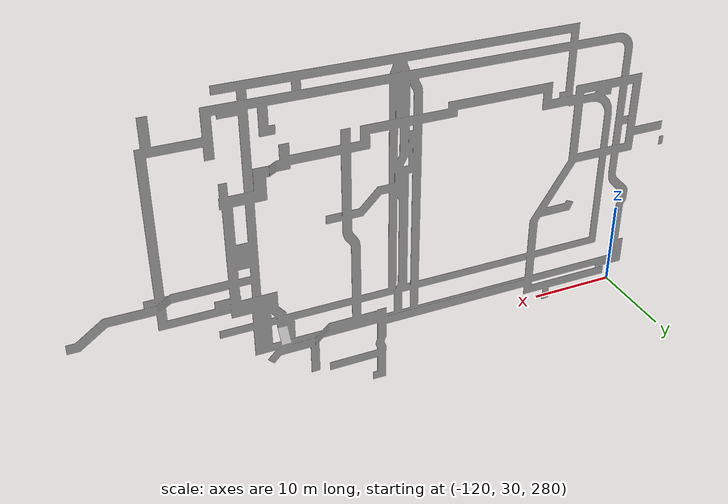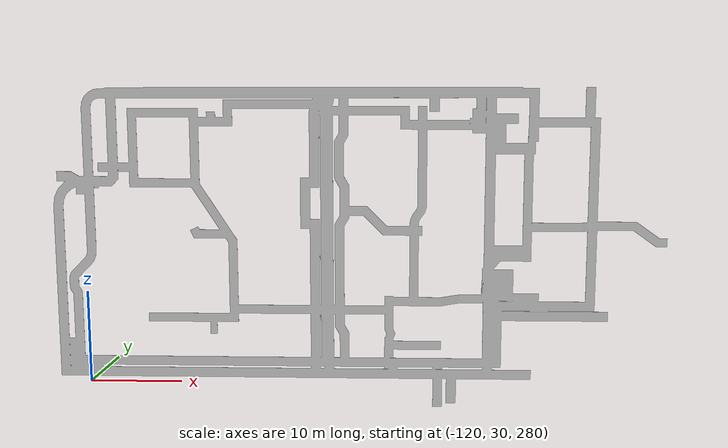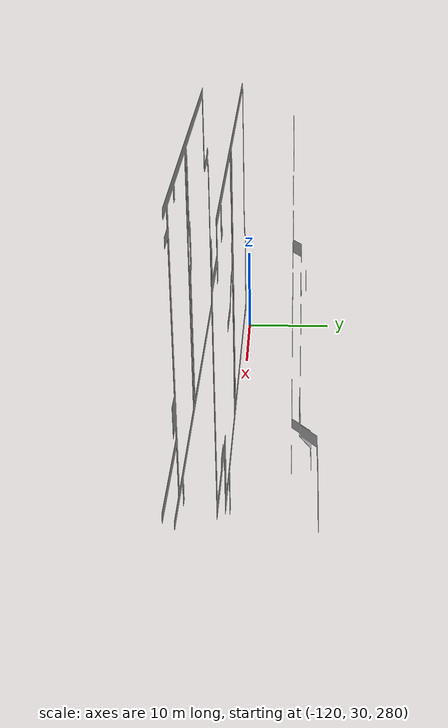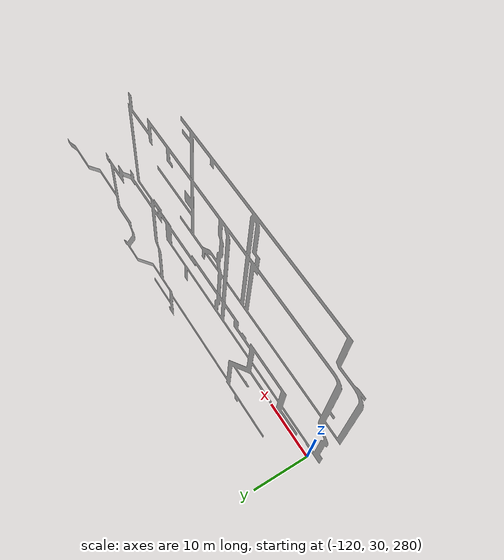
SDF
<?xml version='1.0'?>
<sdf version='1.7'>
    <model name='huldra-big-walkway'>
        <static>true</static>
        <link name='link0'>
            <visual name='HULDRA-PATHWAYS'>
                <pose>0 0 0 0 0 0</pose>
                <geometry>
                    <mesh>
                        <uri>model://huldra-models/huldra-big-walkway/meshes/huldra-big-walkway.obj</uri>
                    </mesh>
                </geometry>
            </visual>
        </link>
    </model>
</sdf>
